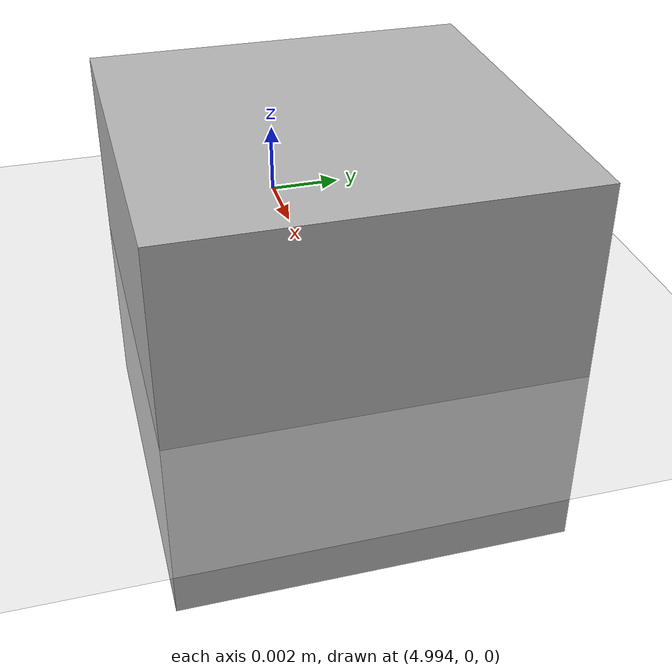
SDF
<?xml version="1.0"?>
<sdf version="1.4">
  <world name="default">

    <!-- Ground Plane -->
    <include>
      <uri>model://ground_plane</uri>
    </include>

    <include>
      <uri>model://sun</uri>
    </include>

    <model name="box">

      <gravity>0</gravity>
      <kinematic>0</kinematic>
      <pose>5 0 0 0 0 0</pose>
      <inertial>
	<frame name="plane"/>
	<mass> 1 </mass>
	<inertia> <ixx>1.0</ixx> <ixy>0.0</ixy> <ixz>0.0</ixz>
	          <iyy>1.0</iyy> <iyz>0.0</iyz>
		  <izz>1.0</izz>
        </inertia>
      </inertial>

      <link name="link">

        <collision name="collision">
          <geometry>
            <box>
              <size>.2 .2 .2</size>
            </box>
          </geometry>
        </collision>

        <visual name="visual">

          <geometry>

	      <box>

              <size>.01 .01 .01</size>

           </box>

	  </geometry>

	  <plugin name="visual_plugin" filename="libgazebo_soft_body_visual.so"/>
        </visual>
      </link>

      <plugin name="model_push" filename="libgazebo_soft_body_model.so"/>
    </model>
  </world>
</sdf>
